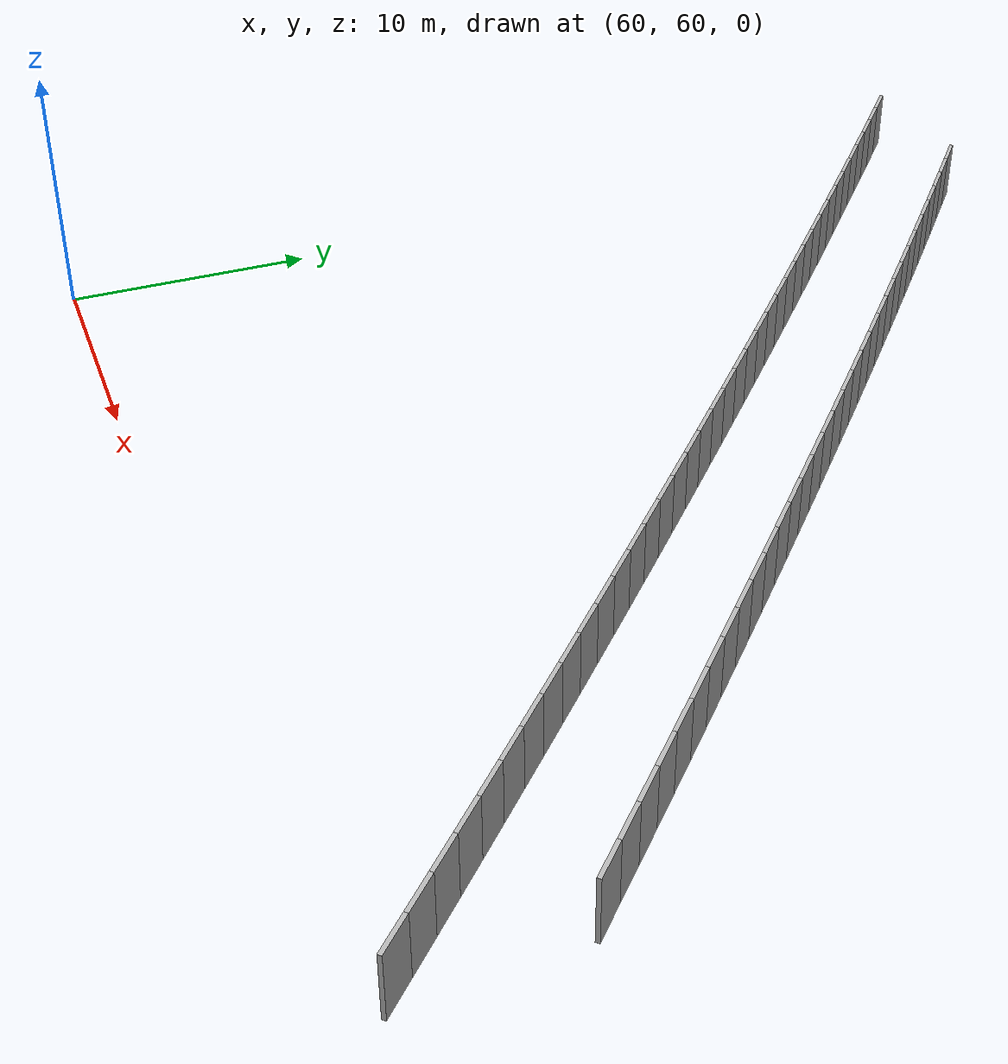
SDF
<?xml version="1.0" ?>
<sdf version="1.6">
  <model name="sps_1920">
    <pose frame="">0 0 0 0 -0 0</pose>
    <static>1</static>
    <self_collide>0</self_collide>
    <allow_auto_disable>0</allow_auto_disable>
    <link name="Wall10465">
      <kinematic>0</kinematic>
      <gravity>1</gravity>
      <self_collide>0</self_collide>
      <collision name="collision">
        <geometry>
          <box>
            <size>1.49648 0.15 2.5</size>
          </box>
        </geometry>
        <pose frame="">0 0 0 0 -0 0</pose>
      </collision>
      <visual name="visual">
        <geometry>
          <box>
            <size>1.49648 0.15 2.5</size>
          </box>
        </geometry>
        <pose frame="">0 0 0 0 -0 0</pose>
        <cast_shadows>1</cast_shadows>
        <transparency>0.0</transparency>
      </visual>
      <pose frame="">99.8541 61.8337 1.25 0 -0 2.36762</pose>
    </link>
    <link name="Wall10466">
      <kinematic>0</kinematic>
      <gravity>1</gravity>
      <self_collide>0</self_collide>
      <collision name="collision">
        <geometry>
          <box>
            <size>1.49639 0.15 2.5</size>
          </box>
        </geometry>
        <pose frame="">0 0 0 0 -0 0</pose>
      </collision>
      <visual name="visual">
        <geometry>
          <box>
            <size>1.49639 0.15 2.5</size>
          </box>
        </geometry>
        <pose frame="">0 0 0 0 -0 0</pose>
        <cast_shadows>1</cast_shadows>
        <transparency>0.0</transparency>
      </visual>
      <pose frame="">98.783 62.8787 1.25 0 -0 2.36943</pose>
    </link>
    <link name="Wall10467">
      <kinematic>0</kinematic>
      <gravity>1</gravity>
      <self_collide>0</self_collide>
      <collision name="collision">
        <geometry>
          <box>
            <size>1.49651 0.15 2.5</size>
          </box>
        </geometry>
        <pose frame="">0 0 0 0 -0 0</pose>
      </collision>
      <visual name="visual">
        <geometry>
          <box>
            <size>1.49651 0.15 2.5</size>
          </box>
        </geometry>
        <pose frame="">0 0 0 0 -0 0</pose>
        <cast_shadows>1</cast_shadows>
        <transparency>0.0</transparency>
      </visual>
      <pose frame="">97.7101 63.9219 1.25 0 -0 2.37105</pose>
    </link>
    <link name="Wall10468">
      <kinematic>0</kinematic>
      <gravity>1</gravity>
      <self_collide>0</self_collide>
      <collision name="collision">
        <geometry>
          <box>
            <size>1.49659 0.15 2.5</size>
          </box>
        </geometry>
        <pose frame="">0 0 0 0 -0 0</pose>
      </collision>
      <visual name="visual">
        <geometry>
          <box>
            <size>1.49659 0.15 2.5</size>
          </box>
        </geometry>
        <pose frame="">0 0 0 0 -0 0</pose>
        <cast_shadows>1</cast_shadows>
        <transparency>0.0</transparency>
      </visual>
      <pose frame="">96.6356 64.9635 1.25 0 -0 2.37252</pose>
    </link>
    <link name="Wall10469">
      <kinematic>0</kinematic>
      <gravity>1</gravity>
      <self_collide>0</self_collide>
      <collision name="collision">
        <geometry>
          <box>
            <size>1.4965 0.15 2.5</size>
          </box>
        </geometry>
        <pose frame="">0 0 0 0 -0 0</pose>
      </collision>
      <visual name="visual">
        <geometry>
          <box>
            <size>1.4965 0.15 2.5</size>
          </box>
        </geometry>
        <pose frame="">0 0 0 0 -0 0</pose>
        <cast_shadows>1</cast_shadows>
        <transparency>0.0</transparency>
      </visual>
      <pose frame="">95.5593 66.0034 1.25 0 -0 2.37416</pose>
    </link>
    <link name="Wall10470">
      <kinematic>0</kinematic>
      <gravity>1</gravity>
      <self_collide>0</self_collide>
      <collision name="collision">
        <geometry>
          <box>
            <size>1.4965 0.15 2.5</size>
          </box>
        </geometry>
        <pose frame="">0 0 0 0 -0 0</pose>
      </collision>
      <visual name="visual">
        <geometry>
          <box>
            <size>1.4965 0.15 2.5</size>
          </box>
        </geometry>
        <pose frame="">0 0 0 0 -0 0</pose>
        <cast_shadows>1</cast_shadows>
        <transparency>0.0</transparency>
      </visual>
      <pose frame="">94.4814 67.0415 1.25 0 -0 2.37586</pose>
    </link>
    <link name="Wall10471">
      <kinematic>0</kinematic>
      <gravity>1</gravity>
      <self_collide>0</self_collide>
      <collision name="collision">
        <geometry>
          <box>
            <size>1.49642 0.15 2.5</size>
          </box>
        </geometry>
        <pose frame="">0 0 0 0 -0 0</pose>
      </collision>
      <visual name="visual">
        <geometry>
          <box>
            <size>1.49642 0.15 2.5</size>
          </box>
        </geometry>
        <pose frame="">0 0 0 0 -0 0</pose>
        <cast_shadows>1</cast_shadows>
        <transparency>0.0</transparency>
      </visual>
      <pose frame="">93.4018 68.0778 1.25 0 -0 2.37745</pose>
    </link>
    <link name="Wall10472">
      <kinematic>0</kinematic>
      <gravity>1</gravity>
      <self_collide>0</self_collide>
      <collision name="collision">
        <geometry>
          <box>
            <size>1.49647 0.15 2.5</size>
          </box>
        </geometry>
        <pose frame="">0 0 0 0 -0 0</pose>
      </collision>
      <visual name="visual">
        <geometry>
          <box>
            <size>1.49647 0.15 2.5</size>
          </box>
        </geometry>
        <pose frame="">0 0 0 0 -0 0</pose>
        <cast_shadows>1</cast_shadows>
        <transparency>0.0</transparency>
      </visual>
      <pose frame="">92.3208 69.1125 1.25 0 -0 2.37878</pose>
    </link>
    <link name="Wall10473">
      <kinematic>0</kinematic>
      <gravity>1</gravity>
      <self_collide>0</self_collide>
      <collision name="collision">
        <geometry>
          <box>
            <size>1.49644 0.15 2.5</size>
          </box>
        </geometry>
        <pose frame="">0 0 0 0 -0 0</pose>
      </collision>
      <visual name="visual">
        <geometry>
          <box>
            <size>1.49644 0.15 2.5</size>
          </box>
        </geometry>
        <pose frame="">0 0 0 0 -0 0</pose>
        <cast_shadows>1</cast_shadows>
        <transparency>0.0</transparency>
      </visual>
      <pose frame="">91.2381 70.1455 1.25 0 -0 2.38057</pose>
    </link>
    <link name="Wall10474">
      <kinematic>0</kinematic>
      <gravity>1</gravity>
      <self_collide>0</self_collide>
      <collision name="collision">
        <geometry>
          <box>
            <size>1.49672 0.15 2.5</size>
          </box>
        </geometry>
        <pose frame="">0 0 0 0 -0 0</pose>
      </collision>
      <visual name="visual">
        <geometry>
          <box>
            <size>1.49672 0.15 2.5</size>
          </box>
        </geometry>
        <pose frame="">0 0 0 0 -0 0</pose>
        <cast_shadows>1</cast_shadows>
        <transparency>0.0</transparency>
      </visual>
      <pose frame="">90.1536 71.1768 1.25 0 -0 2.38209</pose>
    </link>
    <link name="Wall10475">
      <kinematic>0</kinematic>
      <gravity>1</gravity>
      <self_collide>0</self_collide>
      <collision name="collision">
        <geometry>
          <box>
            <size>1.49652 0.15 2.5</size>
          </box>
        </geometry>
        <pose frame="">0 0 0 0 -0 0</pose>
      </collision>
      <visual name="visual">
        <geometry>
          <box>
            <size>1.49652 0.15 2.5</size>
          </box>
        </geometry>
        <pose frame="">0 0 0 0 -0 0</pose>
        <cast_shadows>1</cast_shadows>
        <transparency>0.0</transparency>
      </visual>
      <pose frame="">89.0675 72.2065 1.25 0 -0 2.3836</pose>
    </link>
    <link name="Wall10476">
      <kinematic>0</kinematic>
      <gravity>1</gravity>
      <self_collide>0</self_collide>
      <collision name="collision">
        <geometry>
          <box>
            <size>1.49659 0.15 2.5</size>
          </box>
        </geometry>
        <pose frame="">0 0 0 0 -0 0</pose>
      </collision>
      <visual name="visual">
        <geometry>
          <box>
            <size>1.49659 0.15 2.5</size>
          </box>
        </geometry>
        <pose frame="">0 0 0 0 -0 0</pose>
        <cast_shadows>1</cast_shadows>
        <transparency>0.0</transparency>
      </visual>
      <pose frame="">87.9798 73.2344 1.25 0 -0 2.38532</pose>
    </link>
    <link name="Wall10477">
      <kinematic>0</kinematic>
      <gravity>1</gravity>
      <self_collide>0</self_collide>
      <collision name="collision">
        <geometry>
          <box>
            <size>1.49653 0.15 2.5</size>
          </box>
        </geometry>
        <pose frame="">0 0 0 0 -0 0</pose>
      </collision>
      <visual name="visual">
        <geometry>
          <box>
            <size>1.49653 0.15 2.5</size>
          </box>
        </geometry>
        <pose frame="">0 0 0 0 -0 0</pose>
        <cast_shadows>1</cast_shadows>
        <transparency>0.0</transparency>
      </visual>
      <pose frame="">86.8903 74.2605 1.25 0 -0 2.38691</pose>
    </link>
    <link name="Wall10478">
      <kinematic>0</kinematic>
      <gravity>1</gravity>
      <self_collide>0</self_collide>
      <collision name="collision">
        <geometry>
          <box>
            <size>1.49642 0.15 2.5</size>
          </box>
        </geometry>
        <pose frame="">0 0 0 0 -0 0</pose>
      </collision>
      <visual name="visual">
        <geometry>
          <box>
            <size>1.49642 0.15 2.5</size>
          </box>
        </geometry>
        <pose frame="">0 0 0 0 -0 0</pose>
        <cast_shadows>1</cast_shadows>
        <transparency>0.0</transparency>
      </visual>
      <pose frame="">85.7995 75.2849 1.25 0 -0 2.3883</pose>
    </link>
    <link name="Wall10479">
      <kinematic>0</kinematic>
      <gravity>1</gravity>
      <self_collide>0</self_collide>
      <collision name="collision">
        <geometry>
          <box>
            <size>1.49655 0.15 2.5</size>
          </box>
        </geometry>
        <pose frame="">0 0 0 0 -0 0</pose>
      </collision>
      <visual name="visual">
        <geometry>
          <box>
            <size>1.49655 0.15 2.5</size>
          </box>
        </geometry>
        <pose frame="">0 0 0 0 -0 0</pose>
        <cast_shadows>1</cast_shadows>
        <transparency>0.0</transparency>
      </visual>
      <pose frame="">84.707 76.3076 1.25 0 -0 2.39006</pose>
    </link>
    <link name="Wall10480">
      <kinematic>0</kinematic>
      <gravity>1</gravity>
      <self_collide>0</self_collide>
      <collision name="collision">
        <geometry>
          <box>
            <size>1.49646 0.15 2.5</size>
          </box>
        </geometry>
        <pose frame="">0 0 0 0 -0 0</pose>
      </collision>
      <visual name="visual">
        <geometry>
          <box>
            <size>1.49646 0.15 2.5</size>
          </box>
        </geometry>
        <pose frame="">0 0 0 0 -0 0</pose>
        <cast_shadows>1</cast_shadows>
        <transparency>0.0</transparency>
      </visual>
      <pose frame="">83.6128 77.3285 1.25 0 -0 2.39162</pose>
    </link>
    <link name="Wall10481">
      <kinematic>0</kinematic>
      <gravity>1</gravity>
      <self_collide>0</self_collide>
      <collision name="collision">
        <geometry>
          <box>
            <size>1.49655 0.15 2.5</size>
          </box>
        </geometry>
        <pose frame="">0 0 0 0 -0 0</pose>
      </collision>
      <visual name="visual">
        <geometry>
          <box>
            <size>1.49655 0.15 2.5</size>
          </box>
        </geometry>
        <pose frame="">0 0 0 0 -0 0</pose>
        <cast_shadows>1</cast_shadows>
        <transparency>0.0</transparency>
      </visual>
      <pose frame="">82.517 78.3477 1.25 0 -0 2.39317</pose>
    </link>
    <link name="Wall10482">
      <kinematic>0</kinematic>
      <gravity>1</gravity>
      <self_collide>0</self_collide>
      <collision name="collision">
        <geometry>
          <box>
            <size>1.49651 0.15 2.5</size>
          </box>
        </geometry>
        <pose frame="">0 0 0 0 -0 0</pose>
      </collision>
      <visual name="visual">
        <geometry>
          <box>
            <size>1.49651 0.15 2.5</size>
          </box>
        </geometry>
        <pose frame="">0 0 0 0 -0 0</pose>
        <cast_shadows>1</cast_shadows>
        <transparency>0.0</transparency>
      </visual>
      <pose frame="">81.4195 79.3652 1.25 0 -0 2.39476</pose>
    </link>
    <link name="Wall10483">
      <kinematic>0</kinematic>
      <gravity>1</gravity>
      <self_collide>0</self_collide>
      <collision name="collision">
        <geometry>
          <box>
            <size>1.49647 0.15 2.5</size>
          </box>
        </geometry>
        <pose frame="">0 0 0 0 -0 0</pose>
      </collision>
      <visual name="visual">
        <geometry>
          <box>
            <size>1.49647 0.15 2.5</size>
          </box>
        </geometry>
        <pose frame="">0 0 0 0 -0 0</pose>
        <cast_shadows>1</cast_shadows>
        <transparency>0.0</transparency>
      </visual>
      <pose frame="">80.3205 80.3809 1.25 0 -0 2.39635</pose>
    </link>
    <link name="Wall10484">
      <kinematic>0</kinematic>
      <gravity>1</gravity>
      <self_collide>0</self_collide>
      <collision name="collision">
        <geometry>
          <box>
            <size>1.49652 0.15 2.5</size>
          </box>
        </geometry>
        <pose frame="">0 0 0 0 -0 0</pose>
      </collision>
      <visual name="visual">
        <geometry>
          <box>
            <size>1.49652 0.15 2.5</size>
          </box>
        </geometry>
        <pose frame="">0 0 0 0 -0 0</pose>
        <cast_shadows>1</cast_shadows>
        <transparency>0.0</transparency>
      </visual>
      <pose frame="">79.22 81.3949 1.25 0 -0 2.39788</pose>
    </link>
    <link name="Wall10485">
      <kinematic>0</kinematic>
      <gravity>1</gravity>
      <self_collide>0</self_collide>
      <collision name="collision">
        <geometry>
          <box>
            <size>1.49654 0.15 2.5</size>
          </box>
        </geometry>
        <pose frame="">0 0 0 0 -0 0</pose>
      </collision>
      <visual name="visual">
        <geometry>
          <box>
            <size>1.49654 0.15 2.5</size>
          </box>
        </geometry>
        <pose frame="">0 0 0 0 -0 0</pose>
        <cast_shadows>1</cast_shadows>
        <transparency>0.0</transparency>
      </visual>
      <pose frame="">78.1178 82.4072 1.25 0 -0 2.3995</pose>
    </link>
    <link name="Wall10486">
      <kinematic>0</kinematic>
      <gravity>1</gravity>
      <self_collide>0</self_collide>
      <collision name="collision">
        <geometry>
          <box>
            <size>1.49672 0.15 2.5</size>
          </box>
        </geometry>
        <pose frame="">0 0 0 0 -0 0</pose>
      </collision>
      <visual name="visual">
        <geometry>
          <box>
            <size>1.49672 0.15 2.5</size>
          </box>
        </geometry>
        <pose frame="">0 0 0 0 -0 0</pose>
        <cast_shadows>1</cast_shadows>
        <transparency>0.0</transparency>
      </visual>
      <pose frame="">77.0139 83.4179 1.25 0 -0 2.40093</pose>
    </link>
    <link name="Wall10487">
      <kinematic>0</kinematic>
      <gravity>1</gravity>
      <self_collide>0</self_collide>
      <collision name="collision">
        <geometry>
          <box>
            <size>1.49645 0.15 2.5</size>
          </box>
        </geometry>
        <pose frame="">0 0 0 0 -0 0</pose>
      </collision>
      <visual name="visual">
        <geometry>
          <box>
            <size>1.49645 0.15 2.5</size>
          </box>
        </geometry>
        <pose frame="">0 0 0 0 -0 0</pose>
        <cast_shadows>1</cast_shadows>
        <transparency>0.0</transparency>
      </visual>
      <pose frame="">75.9085 84.4268 1.25 0 -0 2.4027</pose>
    </link>
    <link name="Wall10488">
      <kinematic>0</kinematic>
      <gravity>1</gravity>
      <self_collide>0</self_collide>
      <collision name="collision">
        <geometry>
          <box>
            <size>1.49643 0.15 2.5</size>
          </box>
        </geometry>
        <pose frame="">0 0 0 0 -0 0</pose>
      </collision>
      <visual name="visual">
        <geometry>
          <box>
            <size>1.49643 0.15 2.5</size>
          </box>
        </geometry>
        <pose frame="">0 0 0 0 -0 0</pose>
        <cast_shadows>1</cast_shadows>
        <transparency>0.0</transparency>
      </visual>
      <pose frame="">74.8015 85.4337 1.25 0 -0 2.40429</pose>
    </link>
    <link name="Wall10489">
      <kinematic>0</kinematic>
      <gravity>1</gravity>
      <self_collide>0</self_collide>
      <collision name="collision">
        <geometry>
          <box>
            <size>1.4965 0.15 2.5</size>
          </box>
        </geometry>
        <pose frame="">0 0 0 0 -0 0</pose>
      </collision>
      <visual name="visual">
        <geometry>
          <box>
            <size>1.4965 0.15 2.5</size>
          </box>
        </geometry>
        <pose frame="">0 0 0 0 -0 0</pose>
        <cast_shadows>1</cast_shadows>
        <transparency>0.0</transparency>
      </visual>
      <pose frame="">73.693 86.4389 1.25 0 -0 2.40582</pose>
    </link>
    <link name="Wall10490">
      <kinematic>0</kinematic>
      <gravity>1</gravity>
      <self_collide>0</self_collide>
      <collision name="collision">
        <geometry>
          <box>
            <size>1.4965 0.15 2.5</size>
          </box>
        </geometry>
        <pose frame="">0 0 0 0 -0 0</pose>
      </collision>
      <visual name="visual">
        <geometry>
          <box>
            <size>1.4965 0.15 2.5</size>
          </box>
        </geometry>
        <pose frame="">0 0 0 0 -0 0</pose>
        <cast_shadows>1</cast_shadows>
        <transparency>0.0</transparency>
      </visual>
      <pose frame="">72.5828 87.4424 1.25 0 -0 2.40746</pose>
    </link>
    <link name="Wall10491">
      <kinematic>0</kinematic>
      <gravity>1</gravity>
      <self_collide>0</self_collide>
      <collision name="collision">
        <geometry>
          <box>
            <size>1.49666 0.15 2.5</size>
          </box>
        </geometry>
        <pose frame="">0 0 0 0 -0 0</pose>
      </collision>
      <visual name="visual">
        <geometry>
          <box>
            <size>1.49666 0.15 2.5</size>
          </box>
        </geometry>
        <pose frame="">0 0 0 0 -0 0</pose>
        <cast_shadows>1</cast_shadows>
        <transparency>0.0</transparency>
      </visual>
      <pose frame="">71.4709 88.4442 1.25 0 -0 2.40893</pose>
    </link>
    <link name="Wall10492">
      <kinematic>0</kinematic>
      <gravity>1</gravity>
      <self_collide>0</self_collide>
      <collision name="collision">
        <geometry>
          <box>
            <size>1.49645 0.15 2.5</size>
          </box>
        </geometry>
        <pose frame="">0 0 0 0 -0 0</pose>
      </collision>
      <visual name="visual">
        <geometry>
          <box>
            <size>1.49645 0.15 2.5</size>
          </box>
        </geometry>
        <pose frame="">0 0 0 0 -0 0</pose>
        <cast_shadows>1</cast_shadows>
        <transparency>0.0</transparency>
      </visual>
      <pose frame="">70.3575 89.4442 1.25 0 -0 2.41067</pose>
    </link>
    <link name="Wall10493">
      <kinematic>0</kinematic>
      <gravity>1</gravity>
      <self_collide>0</self_collide>
      <collision name="collision">
        <geometry>
          <box>
            <size>1.49661 0.15 2.5</size>
          </box>
        </geometry>
        <pose frame="">0 0 0 0 -0 0</pose>
      </collision>
      <visual name="visual">
        <geometry>
          <box>
            <size>1.49661 0.15 2.5</size>
          </box>
        </geometry>
        <pose frame="">0 0 0 0 -0 0</pose>
        <cast_shadows>1</cast_shadows>
        <transparency>0.0</transparency>
      </visual>
      <pose frame="">69.2425 90.4424 1.25 0 -0 2.41214</pose>
    </link>
    <link name="Wall10494">
      <kinematic>0</kinematic>
      <gravity>1</gravity>
      <self_collide>0</self_collide>
      <collision name="collision">
        <geometry>
          <box>
            <size>1.49642 0.15 2.5</size>
          </box>
        </geometry>
        <pose frame="">0 0 0 0 -0 0</pose>
      </collision>
      <visual name="visual">
        <geometry>
          <box>
            <size>1.49642 0.15 2.5</size>
          </box>
        </geometry>
        <pose frame="">0 0 0 0 -0 0</pose>
        <cast_shadows>1</cast_shadows>
        <transparency>0.0</transparency>
      </visual>
      <pose frame="">68.126 91.4388 1.25 0 -0 2.41388</pose>
    </link>
    <link name="Wall10495">
      <kinematic>0</kinematic>
      <gravity>1</gravity>
      <self_collide>0</self_collide>
      <collision name="collision">
        <geometry>
          <box>
            <size>1.4965 0.15 2.5</size>
          </box>
        </geometry>
        <pose frame="">0 0 0 0 -0 0</pose>
      </collision>
      <visual name="visual">
        <geometry>
          <box>
            <size>1.4965 0.15 2.5</size>
          </box>
        </geometry>
        <pose frame="">0 0 0 0 -0 0</pose>
        <cast_shadows>1</cast_shadows>
        <transparency>0.0</transparency>
      </visual>
      <pose frame="">67.0079 92.4334 1.25 0 -0 2.41529</pose>
    </link>
    <link name="Wall10496">
      <kinematic>0</kinematic>
      <gravity>1</gravity>
      <self_collide>0</self_collide>
      <collision name="collision">
        <geometry>
          <box>
            <size>1.49661 0.15 2.5</size>
          </box>
        </geometry>
        <pose frame="">0 0 0 0 -0 0</pose>
      </collision>
      <visual name="visual">
        <geometry>
          <box>
            <size>1.49661 0.15 2.5</size>
          </box>
        </geometry>
        <pose frame="">0 0 0 0 -0 0</pose>
        <cast_shadows>1</cast_shadows>
        <transparency>0.0</transparency>
      </visual>
      <pose frame="">65.8881 93.4263 1.25 0 -0 2.41699</pose>
    </link>
    <link name="Wall10497">
      <kinematic>0</kinematic>
      <gravity>1</gravity>
      <self_collide>0</self_collide>
      <collision name="collision">
        <geometry>
          <box>
            <size>1.49645 0.15 2.5</size>
          </box>
        </geometry>
        <pose frame="">0 0 0 0 -0 0</pose>
      </collision>
      <visual name="visual">
        <geometry>
          <box>
            <size>1.49645 0.15 2.5</size>
          </box>
        </geometry>
        <pose frame="">0 0 0 0 -0 0</pose>
        <cast_shadows>1</cast_shadows>
        <transparency>0.0</transparency>
      </visual>
      <pose frame="">64.7668 94.4174 1.25 0 -0 2.41853</pose>
    </link>
    <link name="Wall10498">
      <kinematic>0</kinematic>
      <gravity>1</gravity>
      <self_collide>0</self_collide>
      <collision name="collision">
        <geometry>
          <box>
            <size>1.49647 0.15 2.5</size>
          </box>
        </geometry>
        <pose frame="">0 0 0 0 -0 0</pose>
      </collision>
      <visual name="visual">
        <geometry>
          <box>
            <size>1.49647 0.15 2.5</size>
          </box>
        </geometry>
        <pose frame="">0 0 0 0 -0 0</pose>
        <cast_shadows>1</cast_shadows>
        <transparency>0.0</transparency>
      </visual>
      <pose frame="">63.644 95.4067 1.25 0 -0 2.42012</pose>
    </link>
    <link name="Wall10499">
      <kinematic>0</kinematic>
      <gravity>1</gravity>
      <self_collide>0</self_collide>
      <collision name="collision">
        <geometry>
          <box>
            <size>1.49645 0.15 2.5</size>
          </box>
        </geometry>
        <pose frame="">0 0 0 0 -0 0</pose>
      </collision>
      <visual name="visual">
        <geometry>
          <box>
            <size>1.49645 0.15 2.5</size>
          </box>
        </geometry>
        <pose frame="">0 0 0 0 -0 0</pose>
        <cast_shadows>1</cast_shadows>
        <transparency>0.0</transparency>
      </visual>
      <pose frame="">62.5196 96.3942 1.25 0 -0 2.42174</pose>
    </link>
    <link name="Wall10500">
      <kinematic>0</kinematic>
      <gravity>1</gravity>
      <self_collide>0</self_collide>
      <collision name="collision">
        <geometry>
          <box>
            <size>1.49648 0.15 2.5</size>
          </box>
        </geometry>
        <pose frame="">0 0 0 0 -0 0</pose>
      </collision>
      <visual name="visual">
        <geometry>
          <box>
            <size>1.49648 0.15 2.5</size>
          </box>
        </geometry>
        <pose frame="">0 0 0 0 -0 0</pose>
        <cast_shadows>1</cast_shadows>
        <transparency>0.0</transparency>
      </visual>
      <pose frame="">61.3937 97.3799 1.25 0 -0 2.42333</pose>
    </link>
    <link name="Wall10501">
      <kinematic>0</kinematic>
      <gravity>1</gravity>
      <self_collide>0</self_collide>
      <collision name="collision">
        <geometry>
          <box>
            <size>1.49654 0.15 2.5</size>
          </box>
        </geometry>
        <pose frame="">0 0 0 0 -0 0</pose>
      </collision>
      <visual name="visual">
        <geometry>
          <box>
            <size>1.49654 0.15 2.5</size>
          </box>
        </geometry>
        <pose frame="">0 0 0 0 -0 0</pose>
        <cast_shadows>1</cast_shadows>
        <transparency>0.0</transparency>
      </visual>
      <pose frame="">60.2662 98.3639 1.25 0 -0 2.42477</pose>
    </link>
    <link name="Wall10502">
      <kinematic>0</kinematic>
      <gravity>1</gravity>
      <self_collide>0</self_collide>
      <collision name="collision">
        <geometry>
          <box>
            <size>1.49667 0.15 2.5</size>
          </box>
        </geometry>
        <pose frame="">0 0 0 0 -0 0</pose>
      </collision>
      <visual name="visual">
        <geometry>
          <box>
            <size>1.49667 0.15 2.5</size>
          </box>
        </geometry>
        <pose frame="">0 0 0 0 -0 0</pose>
        <cast_shadows>1</cast_shadows>
        <transparency>0.0</transparency>
      </visual>
      <pose frame="">59.137 99.3462 1.25 0 -0 2.42647</pose>
    </link>
    <link name="Wall11065">
      <kinematic>0</kinematic>
      <gravity>1</gravity>
      <self_collide>0</self_collide>
      <collision name="collision">
        <geometry>
          <box>
            <size>1.50323 0.15 2.5</size>
          </box>
        </geometry>
        <pose frame="">0 0 0 0 -0 0</pose>
      </collision>
      <visual name="visual">
        <geometry>
          <box>
            <size>1.50323 0.15 2.5</size>
          </box>
        </geometry>
        <pose frame="">0 0 0 0 -0 0</pose>
        <cast_shadows>1</cast_shadows>
        <transparency>0.0</transparency>
      </visual>
      <pose frame="">99.5143 67.9387 1.25 0 -0 2.37239</pose>
    </link>
    <link name="Wall11066">
      <kinematic>0</kinematic>
      <gravity>1</gravity>
      <self_collide>0</self_collide>
      <collision name="collision">
        <geometry>
          <box>
            <size>1.50298 0.15 2.5</size>
          </box>
        </geometry>
        <pose frame="">0 0 0 0 -0 0</pose>
      </collision>
      <visual name="visual">
        <geometry>
          <box>
            <size>1.50298 0.15 2.5</size>
          </box>
        </geometry>
        <pose frame="">0 0 0 0 -0 0</pose>
        <cast_shadows>1</cast_shadows>
        <transparency>0.0</transparency>
      </visual>
      <pose frame="">98.4334 68.9832 1.25 0 -0 2.37426</pose>
    </link>
    <link name="Wall11067">
      <kinematic>0</kinematic>
      <gravity>1</gravity>
      <self_collide>0</self_collide>
      <collision name="collision">
        <geometry>
          <box>
            <size>1.50306 0.15 2.5</size>
          </box>
        </geometry>
        <pose frame="">0 0 0 0 -0 0</pose>
      </collision>
      <visual name="visual">
        <geometry>
          <box>
            <size>1.50306 0.15 2.5</size>
          </box>
        </geometry>
        <pose frame="">0 0 0 0 -0 0</pose>
        <cast_shadows>1</cast_shadows>
        <transparency>0.0</transparency>
      </visual>
      <pose frame="">97.3508 70.0258 1.25 0 -0 2.37578</pose>
    </link>
    <link name="Wall11068">
      <kinematic>0</kinematic>
      <gravity>1</gravity>
      <self_collide>0</self_collide>
      <collision name="collision">
        <geometry>
          <box>
            <size>1.5032 0.15 2.5</size>
          </box>
        </geometry>
        <pose frame="">0 0 0 0 -0 0</pose>
      </collision>
      <visual name="visual">
        <geometry>
          <box>
            <size>1.5032 0.15 2.5</size>
          </box>
        </geometry>
        <pose frame="">0 0 0 0 -0 0</pose>
        <cast_shadows>1</cast_shadows>
        <transparency>0.0</transparency>
      </visual>
      <pose frame="">96.2664 71.0668 1.25 0 -0 2.37738</pose>
    </link>
    <link name="Wall11069">
      <kinematic>0</kinematic>
      <gravity>1</gravity>
      <self_collide>0</self_collide>
      <collision name="collision">
        <geometry>
          <box>
            <size>1.50303 0.15 2.5</size>
          </box>
        </geometry>
        <pose frame="">0 0 0 0 -0 0</pose>
      </collision>
      <visual name="visual">
        <geometry>
          <box>
            <size>1.50303 0.15 2.5</size>
          </box>
        </geometry>
        <pose frame="">0 0 0 0 -0 0</pose>
        <cast_shadows>1</cast_shadows>
        <transparency>0.0</transparency>
      </visual>
      <pose frame="">95.1805 72.1061 1.25 0 -0 2.37885</pose>
    </link>
    <link name="Wall11070">
      <kinematic>0</kinematic>
      <gravity>1</gravity>
      <self_collide>0</self_collide>
      <collision name="collision">
        <geometry>
          <box>
            <size>1.50301 0.15 2.5</size>
          </box>
        </geometry>
        <pose frame="">0 0 0 0 -0 0</pose>
      </collision>
      <visual name="visual">
        <geometry>
          <box>
            <size>1.50301 0.15 2.5</size>
          </box>
        </geometry>
        <pose frame="">0 0 0 0 -0 0</pose>
        <cast_shadows>1</cast_shadows>
        <transparency>0.0</transparency>
      </visual>
      <pose frame="">94.093 73.1436 1.25 0 -0 2.38058</pose>
    </link>
    <link name="Wall11071">
      <kinematic>0</kinematic>
      <gravity>1</gravity>
      <self_collide>0</self_collide>
      <collision name="collision">
        <geometry>
          <box>
            <size>1.5031 0.15 2.5</size>
          </box>
        </geometry>
        <pose frame="">0 0 0 0 -0 0</pose>
      </collision>
      <visual name="visual">
        <geometry>
          <box>
            <size>1.5031 0.15 2.5</size>
          </box>
        </geometry>
        <pose frame="">0 0 0 0 -0 0</pose>
        <cast_shadows>1</cast_shadows>
        <transparency>0.0</transparency>
      </visual>
      <pose frame="">93.0039 74.1794 1.25 0 -0 2.38204</pose>
    </link>
    <link name="Wall11072">
      <kinematic>0</kinematic>
      <gravity>1</gravity>
      <self_collide>0</self_collide>
      <collision name="collision">
        <geometry>
          <box>
            <size>1.50304 0.15 2.5</size>
          </box>
        </geometry>
        <pose frame="">0 0 0 0 -0 0</pose>
      </collision>
      <visual name="visual">
        <geometry>
          <box>
            <size>1.50304 0.15 2.5</size>
          </box>
        </geometry>
        <pose frame="">0 0 0 0 -0 0</pose>
        <cast_shadows>1</cast_shadows>
        <transparency>0.0</transparency>
      </visual>
      <pose frame="">91.9131 75.2135 1.25 0 -0 2.38368</pose>
    </link>
    <link name="Wall11073">
      <kinematic>0</kinematic>
      <gravity>1</gravity>
      <self_collide>0</self_collide>
      <collision name="collision">
        <geometry>
          <box>
            <size>1.50306 0.15 2.5</size>
          </box>
        </geometry>
        <pose frame="">0 0 0 0 -0 0</pose>
      </collision>
      <visual name="visual">
        <geometry>
          <box>
            <size>1.50306 0.15 2.5</size>
          </box>
        </geometry>
        <pose frame="">0 0 0 0 -0 0</pose>
        <cast_shadows>1</cast_shadows>
        <transparency>0.0</transparency>
      </visual>
      <pose frame="">90.8207 76.2459 1.25 0 -0 2.3852</pose>
    </link>
    <link name="Wall11074">
      <kinematic>0</kinematic>
      <gravity>1</gravity>
      <self_collide>0</self_collide>
      <collision name="collision">
        <geometry>
          <box>
            <size>1.50306 0.15 2.5</size>
          </box>
        </geometry>
        <pose frame="">0 0 0 0 -0 0</pose>
      </collision>
      <visual name="visual">
        <geometry>
          <box>
            <size>1.50306 0.15 2.5</size>
          </box>
        </geometry>
        <pose frame="">0 0 0 0 -0 0</pose>
        <cast_shadows>1</cast_shadows>
        <transparency>0.0</transparency>
      </visual>
      <pose frame="">89.7266 77.2765 1.25 0 -0 2.38698</pose>
    </link>
    <link name="Wall11075">
      <kinematic>0</kinematic>
      <gravity>1</gravity>
      <self_collide>0</self_collide>
      <collision name="collision">
        <geometry>
          <box>
            <size>1.50321 0.15 2.5</size>
          </box>
        </geometry>
        <pose frame="">0 0 0 0 -0 0</pose>
      </collision>
      <visual name="visual">
        <geometry>
          <box>
            <size>1.50321 0.15 2.5</size>
          </box>
        </geometry>
        <pose frame="">0 0 0 0 -0 0</pose>
        <cast_shadows>1</cast_shadows>
        <transparency>0.0</transparency>
      </visual>
      <pose frame="">88.6308 78.3054 1.25 0 -0 2.38836</pose>
    </link>
    <link name="Wall11076">
      <kinematic>0</kinematic>
      <gravity>1</gravity>
      <self_collide>0</self_collide>
      <collision name="collision">
        <geometry>
          <box>
            <size>1.50308 0.15 2.5</size>
          </box>
        </geometry>
        <pose frame="">0 0 0 0 -0 0</pose>
      </collision>
      <visual name="visual">
        <geometry>
          <box>
            <size>1.50308 0.15 2.5</size>
          </box>
        </geometry>
        <pose frame="">0 0 0 0 -0 0</pose>
        <cast_shadows>1</cast_shadows>
        <transparency>0.0</transparency>
      </visual>
      <pose frame="">87.5334 79.3326 1.25 0 -0 2.39005</pose>
    </link>
    <link name="Wall11077">
      <kinematic>0</kinematic>
      <gravity>1</gravity>
      <self_collide>0</self_collide>
      <collision name="collision">
        <geometry>
          <box>
            <size>1.50311 0.15 2.5</size>
          </box>
        </geometry>
        <pose frame="">0 0 0 0 -0 0</pose>
      </collision>
      <visual name="visual">
        <geometry>
          <box>
            <size>1.50311 0.15 2.5</size>
          </box>
        </geometry>
        <pose frame="">0 0 0 0 -0 0</pose>
        <cast_shadows>1</cast_shadows>
        <transparency>0.0</transparency>
      </visual>
      <pose frame="">86.4344 80.358 1.25 0 -0 2.39158</pose>
    </link>
    <link name="Wall11078">
      <kinematic>0</kinematic>
      <gravity>1</gravity>
      <self_collide>0</self_collide>
      <collision name="collision">
        <geometry>
          <box>
            <size>1.50307 0.15 2.5</size>
          </box>
        </geometry>
        <pose frame="">0 0 0 0 -0 0</pose>
      </collision>
      <visual name="visual">
        <geometry>
          <box>
            <size>1.50307 0.15 2.5</size>
          </box>
        </geometry>
        <pose frame="">0 0 0 0 -0 0</pose>
        <cast_shadows>1</cast_shadows>
        <transparency>0.0</transparency>
      </visual>
      <pose frame="">85.3338 81.3817 1.25 0 -0 2.39321</pose>
    </link>
    <link name="Wall11079">
      <kinematic>0</kinematic>
      <gravity>1</gravity>
      <self_collide>0</self_collide>
      <collision name="collision">
        <geometry>
          <box>
            <size>1.50285 0.15 2.5</size>
          </box>
        </geometry>
        <pose frame="">0 0 0 0 -0 0</pose>
      </collision>
      <visual name="visual">
        <geometry>
          <box>
            <size>1.50285 0.15 2.5</size>
          </box>
        </geometry>
        <pose frame="">0 0 0 0 -0 0</pose>
        <cast_shadows>1</cast_shadows>
        <transparency>0.0</transparency>
      </visual>
      <pose frame="">84.2317 82.4036 1.25 0 -0 2.39469</pose>
    </link>
    <link name="Wall11080">
      <kinematic>0</kinematic>
      <gravity>1</gravity>
      <self_collide>0</self_collide>
      <collision name="collision">
        <geometry>
          <box>
            <size>1.50312 0.15 2.5</size>
          </box>
        </geometry>
        <pose frame="">0 0 0 0 -0 0</pose>
      </collision>
      <visual name="visual">
        <geometry>
          <box>
            <size>1.50312 0.15 2.5</size>
          </box>
        </geometry>
        <pose frame="">0 0 0 0 -0 0</pose>
        <cast_shadows>1</cast_shadows>
        <transparency>0.0</transparency>
      </visual>
      <pose frame="">83.128 83.4238 1.25 0 -0 2.39629</pose>
    </link>
    <link name="Wall11081">
      <kinematic>0</kinematic>
      <gravity>1</gravity>
      <self_collide>0</self_collide>
      <collision name="collision">
        <geometry>
          <box>
            <size>1.50318 0.15 2.5</size>
          </box>
        </geometry>
        <pose frame="">0 0 0 0 -0 0</pose>
      </collision>
      <visual name="visual">
        <geometry>
          <box>
            <size>1.50318 0.15 2.5</size>
          </box>
        </geometry>
        <pose frame="">0 0 0 0 -0 0</pose>
        <cast_shadows>1</cast_shadows>
        <transparency>0.0</transparency>
      </visual>
      <pose frame="">82.0225 84.4423 1.25 0 -0 2.39798</pose>
    </link>
    <link name="Wall11082">
      <kinematic>0</kinematic>
      <gravity>1</gravity>
      <self_collide>0</self_collide>
      <collision name="collision">
        <geometry>
          <box>
            <size>1.50302 0.15 2.5</size>
          </box>
        </geometry>
        <pose frame="">0 0 0 0 -0 0</pose>
      </collision>
      <visual name="visual">
        <geometry>
          <box>
            <size>1.50302 0.15 2.5</size>
          </box>
        </geometry>
        <pose frame="">0 0 0 0 -0 0</pose>
        <cast_shadows>1</cast_shadows>
        <transparency>0.0</transparency>
      </visual>
      <pose frame="">80.9154 85.459 1.25 0 -0 2.39948</pose>
    </link>
    <link name="Wall11083">
      <kinematic>0</kinematic>
      <gravity>1</gravity>
      <self_collide>0</self_collide>
      <collision name="collision">
        <geometry>
          <box>
            <size>1.50316 0.15 2.5</size>
          </box>
        </geometry>
        <pose frame="">0 0 0 0 -0 0</pose>
      </collision>
      <visual name="visual">
        <geometry>
          <box>
            <size>1.50316 0.15 2.5</size>
          </box>
        </geometry>
        <pose frame="">0 0 0 0 -0 0</pose>
        <cast_shadows>1</cast_shadows>
        <transparency>0.0</transparency>
      </visual>
      <pose frame="">79.8068 86.474 1.25 0 -0 2.401</pose>
    </link>
    <link name="Wall11084">
      <kinematic>0</kinematic>
      <gravity>1</gravity>
      <self_collide>0</self_collide>
      <collision name="collision">
        <geometry>
          <box>
            <size>1.50311 0.15 2.5</size>
          </box>
        </geometry>
        <pose frame="">0 0 0 0 -0 0</pose>
      </collision>
      <visual name="visual">
        <geometry>
          <box>
            <size>1.50311 0.15 2.5</size>
          </box>
        </geometry>
        <pose frame="">0 0 0 0 -0 0</pose>
        <cast_shadows>1</cast_shadows>
        <transparency>0.0</transparency>
      </visual>
      <pose frame="">78.6964 87.4872 1.25 0 -0 2.40278</pose>
    </link>
    <link name="Wall11085">
      <kinematic>0</kinematic>
      <gravity>1</gravity>
      <self_collide>0</self_collide>
      <collision name="collision">
        <geometry>
          <box>
            <size>1.50302 0.15 2.5</size>
          </box>
        </geometry>
        <pose frame="">0 0 0 0 -0 0</pose>
      </collision>
      <visual name="visual">
        <geometry>
          <box>
            <size>1.50302 0.15 2.5</size>
          </box>
        </geometry>
        <pose frame="">0 0 0 0 -0 0</pose>
        <cast_shadows>1</cast_shadows>
        <transparency>0.0</transparency>
      </visual>
      <pose frame="">77.5846 88.4987 1.25 0 -0 2.40399</pose>
    </link>
    <link name="Wall11086">
      <kinematic>0</kinematic>
      <gravity>1</gravity>
      <self_collide>0</self_collide>
      <collision name="collision">
        <geometry>
          <box>
            <size>1.50316 0.15 2.5</size>
          </box>
        </geometry>
        <pose frame="">0 0 0 0 -0 0</pose>
      </collision>
      <visual name="visual">
        <geometry>
          <box>
            <size>1.50316 0.15 2.5</size>
          </box>
        </geometry>
        <pose frame="">0 0 0 0 -0 0</pose>
        <cast_shadows>1</cast_shadows>
        <transparency>0.0</transparency>
      </visual>
      <pose frame="">76.4713 89.5085 1.25 0 -0 2.40589</pose>
    </link>
    <link name="Wall11087">
      <kinematic>0</kinematic>
      <gravity>1</gravity>
      <self_collide>0</self_collide>
      <collision name="collision">
        <geometry>
          <box>
            <size>1.50306 0.15 2.5</size>
          </box>
        </geometry>
        <pose frame="">0 0 0 0 -0 0</pose>
      </collision>
      <visual name="visual">
        <geometry>
          <box>
            <size>1.50306 0.15 2.5</size>
          </box>
        </geometry>
        <pose frame="">0 0 0 0 -0 0</pose>
        <cast_shadows>1</cast_shadows>
        <transparency>0.0</transparency>
      </visual>
      <pose frame="">75.3562 90.5164 1.25 0 -0 2.40741</pose>
    </link>
    <link name="Wall11088">
      <kinematic>0</kinematic>
      <gravity>1</gravity>
      <self_collide>0</self_collide>
      <collision name="collision">
        <geometry>
          <box>
            <size>1.50311 0.15 2.5</size>
          </box>
        </geometry>
        <pose frame="">0 0 0 0 -0 0</pose>
      </collision>
      <visual name="visual">
        <geometry>
          <box>
            <size>1.50311 0.15 2.5</size>
          </box>
        </geometry>
        <pose frame="">0 0 0 0 -0 0</pose>
        <cast_shadows>1</cast_shadows>
        <transparency>0.0</transparency>
      </visual>
      <pose frame="">74.2395 91.5225 1.25 0 -0 2.40908</pose>
    </link>
    <link name="Wall11089">
      <kinematic>0</kinematic>
      <gravity>1</gravity>
      <self_collide>0</self_collide>
      <collision name="collision">
        <geometry>
          <box>
            <size>1.50301 0.15 2.5</size>
          </box>
        </geometry>
        <pose frame="">0 0 0 0 -0 0</pose>
      </collision>
      <visual name="visual">
        <geometry>
          <box>
            <size>1.50301 0.15 2.5</size>
          </box>
        </geometry>
        <pose frame="">0 0 0 0 -0 0</pose>
        <cast_shadows>1</cast_shadows>
        <transparency>0.0</transparency>
      </visual>
      <pose frame="">73.1212 92.5268 1.25 0 -0 2.41061</pose>
    </link>
    <link name="Wall11090">
      <kinematic>0</kinematic>
      <gravity>1</gravity>
      <self_collide>0</self_collide>
      <collision name="collision">
        <geometry>
          <box>
            <size>1.50311 0.15 2.5</size>
          </box>
        </geometry>
        <pose frame="">0 0 0 0 -0 0</pose>
      </collision>
      <visual name="visual">
        <geometry>
          <box>
            <size>1.50311 0.15 2.5</size>
          </box>
        </geometry>
        <pose frame="">0 0 0 0 -0 0</pose>
        <cast_shadows>1</cast_shadows>
        <transparency>0.0</transparency>
      </visual>
      <pose frame="">72.0013 93.5293 1.25 0 -0 2.4123</pose>
    </link>
    <link name="Wall11091">
      <kinematic>0</kinematic>
      <gravity>1</gravity>
      <self_collide>0</self_collide>
      <collision name="collision">
        <geometry>
          <box>
            <size>1.50303 0.15 2.5</size>
          </box>
        </geometry>
        <pose frame="">0 0 0 0 -0 0</pose>
      </collision>
      <visual name="visual">
        <geometry>
          <box>
            <size>1.50303 0.15 2.5</size>
          </box>
        </geometry>
        <pose frame="">0 0 0 0 -0 0</pose>
        <cast_shadows>1</cast_shadows>
        <transparency>0.0</transparency>
      </visual>
      <pose frame="">70.8798 94.53 1.25 0 -0 2.41383</pose>
    </link>
    <link name="Wall11092">
      <kinematic>0</kinematic>
      <gravity>1</gravity>
      <self_collide>0</self_collide>
      <collision name="collision">
        <geometry>
          <box>
            <size>1.50307 0.15 2.5</size>
          </box>
        </geometry>
        <pose frame="">0 0 0 0 -0 0</pose>
      </collision>
      <visual name="visual">
        <geometry>
          <box>
            <size>1.50307 0.15 2.5</size>
          </box>
        </geometry>
        <pose frame="">0 0 0 0 -0 0</pose>
        <cast_shadows>1</cast_shadows>
        <transparency>0.0</transparency>
      </visual>
      <pose frame="">69.7567 95.529 1.25 0 -0 2.41532</pose>
    </link>
    <link name="Wall11093">
      <kinematic>0</kinematic>
      <gravity>1</gravity>
      <self_collide>0</self_collide>
      <collision name="collision">
        <geometry>
          <box>
            <size>1.50308 0.15 2.5</size>
          </box>
        </geometry>
        <pose frame="">0 0 0 0 -0 0</pose>
      </collision>
      <visual name="visual">
        <geometry>
          <box>
            <size>1.50308 0.15 2.5</size>
          </box>
        </geometry>
        <pose frame="">0 0 0 0 -0 0</pose>
        <cast_shadows>1</cast_shadows>
        <transparency>0.0</transparency>
      </visual>
      <pose frame="">68.6322 96.5263 1.25 0 -0 2.4169</pose>
    </link>
    <link name="Wall11094">
      <kinematic>0</kinematic>
      <gravity>1</gravity>
      <self_collide>0</self_collide>
      <collision name="collision">
        <geometry>
          <box>
            <size>1.50285 0.15 2.5</size>
          </box>
        </geometry>
        <pose frame="">0 0 0 0 -0 0</pose>
      </collision>
      <visual name="visual">
        <geometry>
          <box>
            <size>1.50285 0.15 2.5</size>
          </box>
        </geometry>
        <pose frame="">0 0 0 0 -0 0</pose>
        <cast_shadows>1</cast_shadows>
        <transparency>0.0</transparency>
      </visual>
      <pose frame="">67.5061 97.5217 1.25 0 -0 2.41855</pose>
    </link>
    <link name="Wall11095">
      <kinematic>0</kinematic>
      <gravity>1</gravity>
      <self_collide>0</self_collide>
      <collision name="collision">
        <geometry>
          <box>
            <size>1.50313 0.15 2.5</size>
          </box>
        </geometry>
        <pose frame="">0 0 0 0 -0 0</pose>
      </collision>
      <visual name="visual">
        <geometry>
          <box>
            <size>1.50313 0.15 2.5</size>
          </box>
        </geometry>
        <pose frame="">0 0 0 0 -0 0</pose>
        <cast_shadows>1</cast_shadows>
        <transparency>0.0</transparency>
      </visual>
      <pose frame="">66.3783 98.5153 1.25 0 -0 2.42012</pose>
    </link>
    <link name="Wall11096">
      <kinematic>0</kinematic>
      <gravity>1</gravity>
      <self_collide>0</self_collide>
      <collision name="collision">
        <geometry>
          <box>
            <size>1.50301 0.15 2.5</size>
          </box>
        </geometry>
        <pose frame="">0 0 0 0 -0 0</pose>
      </collision>
      <visual name="visual">
        <geometry>
          <box>
            <size>1.50301 0.15 2.5</size>
          </box>
        </geometry>
        <pose frame="">0 0 0 0 -0 0</pose>
        <cast_shadows>1</cast_shadows>
        <transparency>0.0</transparency>
      </visual>
      <pose frame="">65.249 99.5072 1.25 0 -0 2.42162</pose>
    </link>
  </model>
</sdf>
